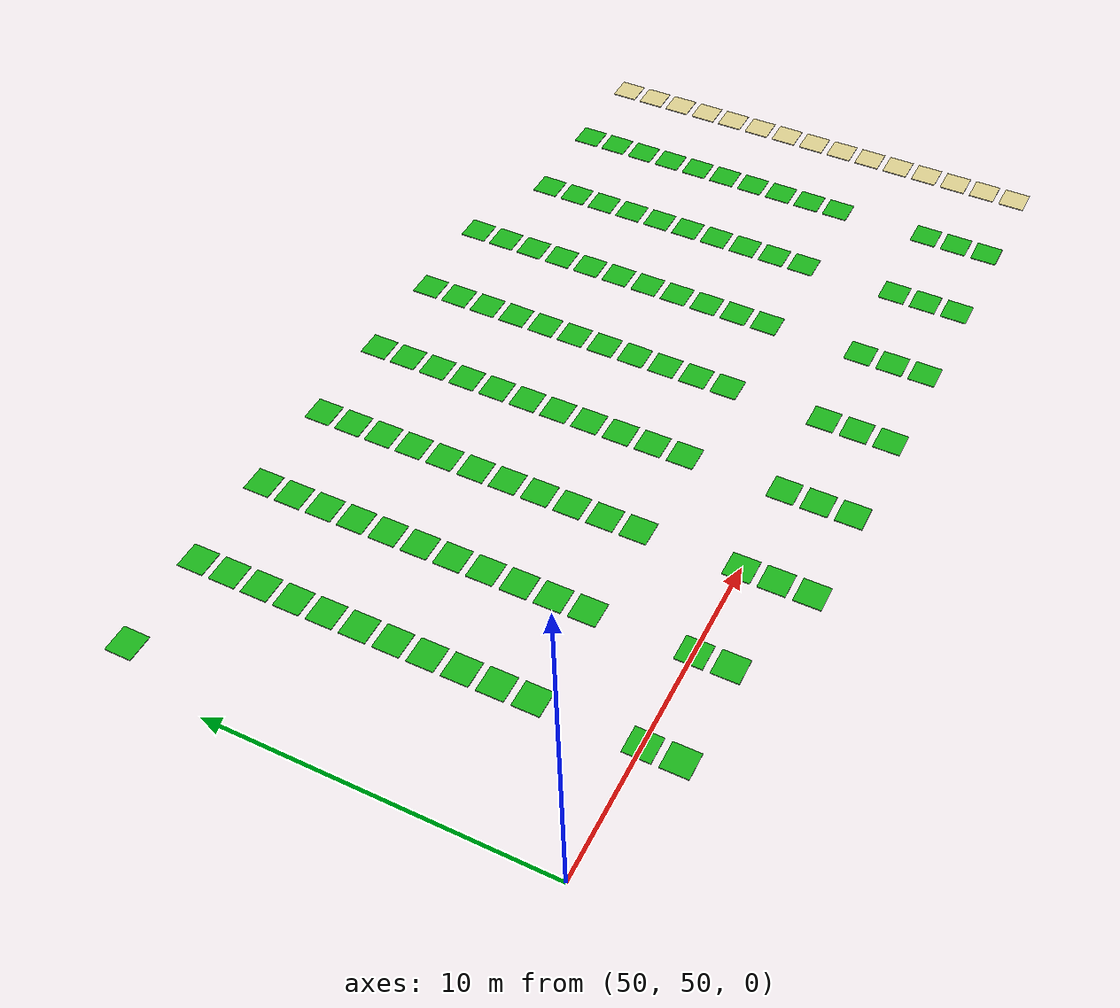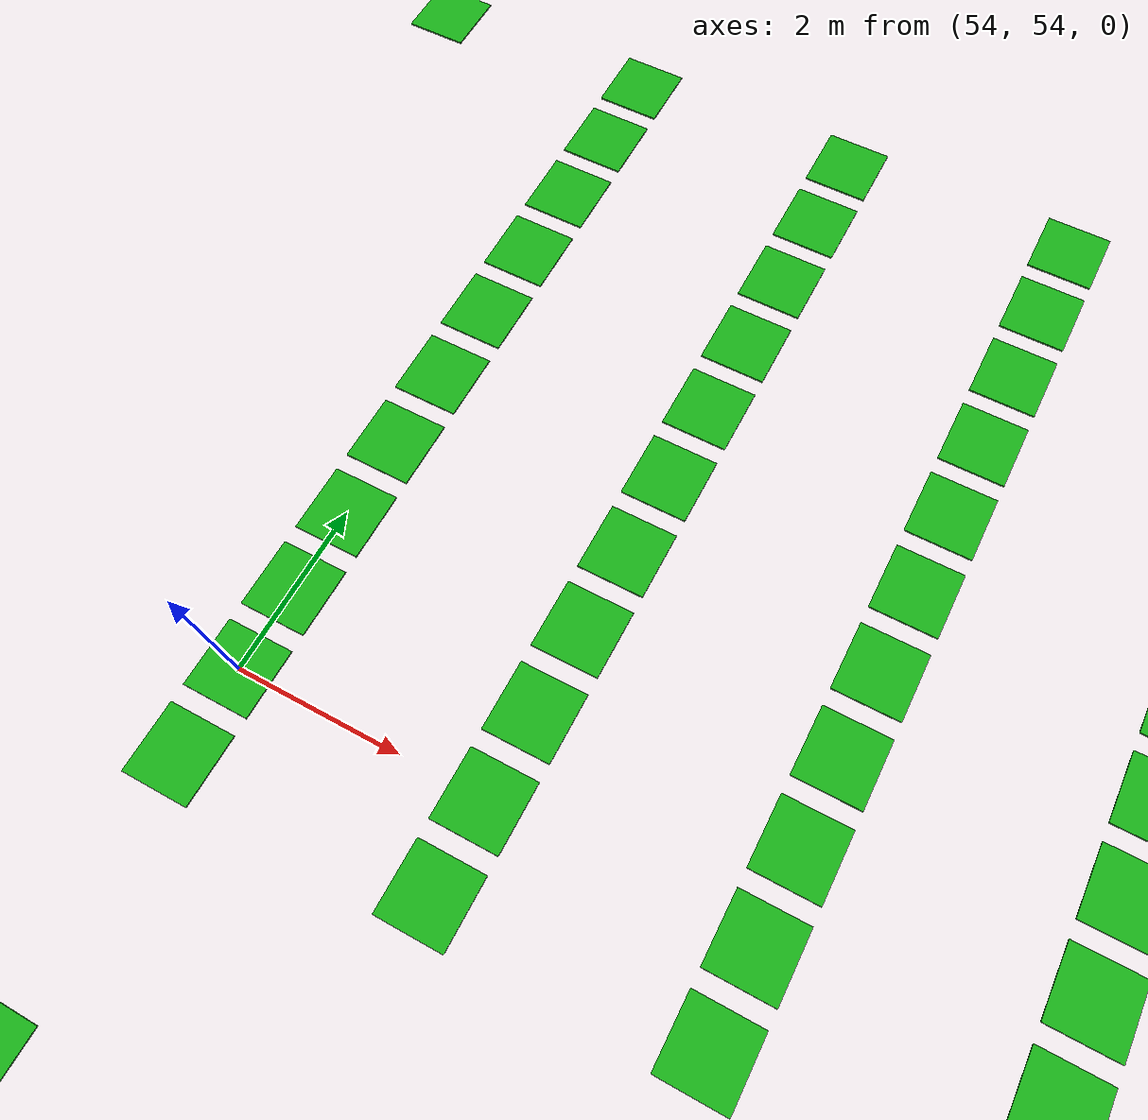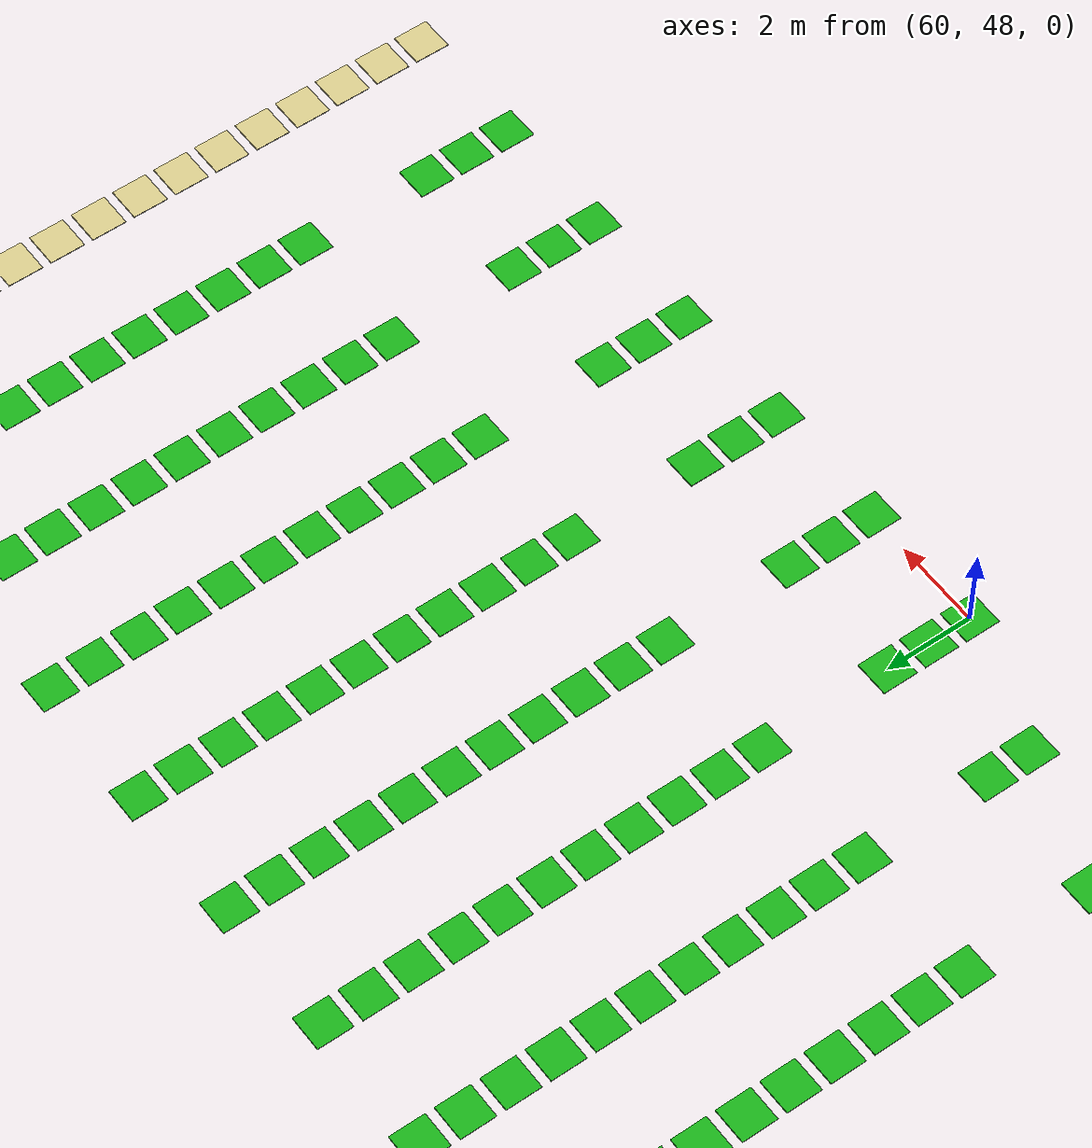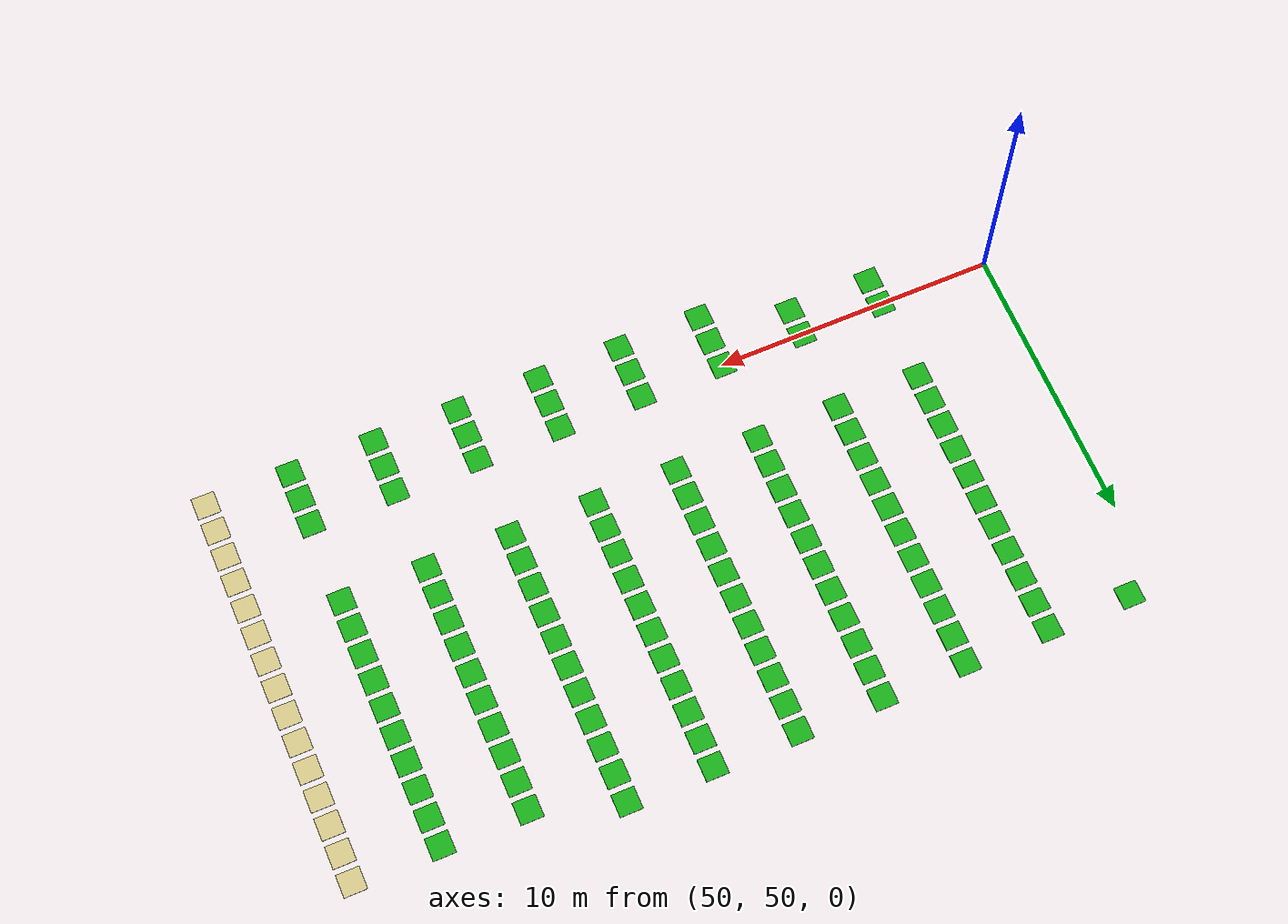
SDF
<sdf version="1.10">
 <world name="my_map">
  <model name="shelf_867">
   <static>true</static>
   <pose>51.0
        63.0
        0.02
        0 0 0</pose>
   <link name="link">
    <visual name="visual">
     <geometry><box><size>0.8
                0.8
                0.02</size></box></geometry>
     <material><ambient>0.10 0.70 0.10 1</ambient><diffuse>0.10 0.70 0.10 1</diffuse></material>
    </visual>
   </link>
  </model>
  <model name="shelf_868">
   <static>true</static>
   <pose>54.0
        63.0
        0.02
        0 0 0</pose>
   <link name="link">
    <visual name="visual">
     <geometry><box><size>0.8
                0.8
                0.02</size></box></geometry>
     <material><ambient>0.10 0.70 0.10 1</ambient><diffuse>0.10 0.70 0.10 1</diffuse></material>
    </visual>
   </link>
  </model>
  <model name="shelf_869">
   <static>true</static>
   <pose>57.0
        63.0
        0.02
        0 0 0</pose>
   <link name="link">
    <visual name="visual">
     <geometry><box><size>0.8
                0.8
                0.02</size></box></geometry>
     <material><ambient>0.10 0.70 0.10 1</ambient><diffuse>0.10 0.70 0.10 1</diffuse></material>
    </visual>
   </link>
  </model>
  <model name="shelf_870">
   <static>true</static>
   <pose>60.0
        63.0
        0.02
        0 0 0</pose>
   <link name="link">
    <visual name="visual">
     <geometry><box><size>0.8
                0.8
                0.02</size></box></geometry>
     <material><ambient>0.10 0.70 0.10 1</ambient><diffuse>0.10 0.70 0.10 1</diffuse></material>
    </visual>
   </link>
  </model>
  <model name="shelf_871">
   <static>true</static>
   <pose>63.0
        63.0
        0.02
        0 0 0</pose>
   <link name="link">
    <visual name="visual">
     <geometry><box><size>0.8
                0.8
                0.02</size></box></geometry>
     <material><ambient>0.10 0.70 0.10 1</ambient><diffuse>0.10 0.70 0.10 1</diffuse></material>
    </visual>
   </link>
  </model>
  <model name="shelf_872">
   <static>true</static>
   <pose>66.0
        63.0
        0.02
        0 0 0</pose>
   <link name="link">
    <visual name="visual">
     <geometry><box><size>0.8
                0.8
                0.02</size></box></geometry>
     <material><ambient>0.10 0.70 0.10 1</ambient><diffuse>0.10 0.70 0.10 1</diffuse></material>
    </visual>
   </link>
  </model>
  <model name="shelf_873">
   <static>true</static>
   <pose>69.0
        63.0
        0.02
        0 0 0</pose>
   <link name="link">
    <visual name="visual">
     <geometry><box><size>0.8
                0.8
                0.02</size></box></geometry>
     <material><ambient>0.10 0.70 0.10 1</ambient><diffuse>0.10 0.70 0.10 1</diffuse></material>
    </visual>
   </link>
  </model>
  <model name="shelf_893">
   <static>true</static>
   <pose>54.0
        62.0
        0.02
        0 0 0</pose>
   <link name="link">
    <visual name="visual">
     <geometry><box><size>0.8
                0.8
                0.02</size></box></geometry>
     <material><ambient>0.10 0.70 0.10 1</ambient><diffuse>0.10 0.70 0.10 1</diffuse></material>
    </visual>
   </link>
  </model>
  <model name="shelf_894">
   <static>true</static>
   <pose>57.0
        62.0
        0.02
        0 0 0</pose>
   <link name="link">
    <visual name="visual">
     <geometry><box><size>0.8
                0.8
                0.02</size></box></geometry>
     <material><ambient>0.10 0.70 0.10 1</ambient><diffuse>0.10 0.70 0.10 1</diffuse></material>
    </visual>
   </link>
  </model>
  <model name="shelf_895">
   <static>true</static>
   <pose>60.0
        62.0
        0.02
        0 0 0</pose>
   <link name="link">
    <visual name="visual">
     <geometry><box><size>0.8
                0.8
                0.02</size></box></geometry>
     <material><ambient>0.10 0.70 0.10 1</ambient><diffuse>0.10 0.70 0.10 1</diffuse></material>
    </visual>
   </link>
  </model>
  <model name="shelf_896">
   <static>true</static>
   <pose>63.0
        62.0
        0.02
        0 0 0</pose>
   <link name="link">
    <visual name="visual">
     <geometry><box><size>0.8
                0.8
                0.02</size></box></geometry>
     <material><ambient>0.10 0.70 0.10 1</ambient><diffuse>0.10 0.70 0.10 1</diffuse></material>
    </visual>
   </link>
  </model>
  <model name="shelf_897">
   <static>true</static>
   <pose>66.0
        62.0
        0.02
        0 0 0</pose>
   <link name="link">
    <visual name="visual">
     <geometry><box><size>0.8
                0.8
                0.02</size></box></geometry>
     <material><ambient>0.10 0.70 0.10 1</ambient><diffuse>0.10 0.70 0.10 1</diffuse></material>
    </visual>
   </link>
  </model>
  <model name="shelf_898">
   <static>true</static>
   <pose>69.0
        62.0
        0.02
        0 0 0</pose>
   <link name="link">
    <visual name="visual">
     <geometry><box><size>0.8
                0.8
                0.02</size></box></geometry>
     <material><ambient>0.10 0.70 0.10 1</ambient><diffuse>0.10 0.70 0.10 1</diffuse></material>
    </visual>
   </link>
  </model>
  <model name="shelf_899">
   <static>true</static>
   <pose>72.0
        62.0
        0.02
        0 0 0</pose>
   <link name="link">
    <visual name="visual">
     <geometry><box><size>0.8
                0.8
                0.02</size></box></geometry>
     <material><ambient>0.10 0.70 0.10 1</ambient><diffuse>0.10 0.70 0.10 1</diffuse></material>
    </visual>
   </link>
  </model>
  <model name="shelf_900">
   <static>true</static>
   <pose>75.0
        62.0
        0.02
        0 0 0</pose>
   <link name="link">
    <visual name="visual">
     <geometry><box><size>0.8
                0.8
                0.02</size></box></geometry>
     <material><ambient>0.10 0.70 0.10 1</ambient><diffuse>0.10 0.70 0.10 1</diffuse></material>
    </visual>
   </link>
  </model>
  <model name="staging_080">
   <static>true</static>
   <pose>78.0
        62.0
        0.02
        0 0 0</pose>
   <link name="link">
    <visual name="visual">
     <geometry><box><size>0.8
                0.8
                0.02</size></box></geometry>
     <material><ambient>0.85 0.80 0.55 1</ambient><diffuse>0.85 0.80 0.55 1</diffuse></material>
    </visual>
   </link>
  </model>
  <model name="shelf_918">
   <static>true</static>
   <pose>54.0
        61.0
        0.02
        0 0 0</pose>
   <link name="link">
    <visual name="visual">
     <geometry><box><size>0.8
                0.8
                0.02</size></box></geometry>
     <material><ambient>0.10 0.70 0.10 1</ambient><diffuse>0.10 0.70 0.10 1</diffuse></material>
    </visual>
   </link>
  </model>
  <model name="shelf_919">
   <static>true</static>
   <pose>57.0
        61.0
        0.02
        0 0 0</pose>
   <link name="link">
    <visual name="visual">
     <geometry><box><size>0.8
                0.8
                0.02</size></box></geometry>
     <material><ambient>0.10 0.70 0.10 1</ambient><diffuse>0.10 0.70 0.10 1</diffuse></material>
    </visual>
   </link>
  </model>
  <model name="shelf_920">
   <static>true</static>
   <pose>60.0
        61.0
        0.02
        0 0 0</pose>
   <link name="link">
    <visual name="visual">
     <geometry><box><size>0.8
                0.8
                0.02</size></box></geometry>
     <material><ambient>0.10 0.70 0.10 1</ambient><diffuse>0.10 0.70 0.10 1</diffuse></material>
    </visual>
   </link>
  </model>
  <model name="shelf_921">
   <static>true</static>
   <pose>63.0
        61.0
        0.02
        0 0 0</pose>
   <link name="link">
    <visual name="visual">
     <geometry><box><size>0.8
                0.8
                0.02</size></box></geometry>
     <material><ambient>0.10 0.70 0.10 1</ambient><diffuse>0.10 0.70 0.10 1</diffuse></material>
    </visual>
   </link>
  </model>
  <model name="shelf_922">
   <static>true</static>
   <pose>66.0
        61.0
        0.02
        0 0 0</pose>
   <link name="link">
    <visual name="visual">
     <geometry><box><size>0.8
                0.8
                0.02</size></box></geometry>
     <material><ambient>0.10 0.70 0.10 1</ambient><diffuse>0.10 0.70 0.10 1</diffuse></material>
    </visual>
   </link>
  </model>
  <model name="shelf_923">
   <static>true</static>
   <pose>69.0
        61.0
        0.02
        0 0 0</pose>
   <link name="link">
    <visual name="visual">
     <geometry><box><size>0.8
                0.8
                0.02</size></box></geometry>
     <material><ambient>0.10 0.70 0.10 1</ambient><diffuse>0.10 0.70 0.10 1</diffuse></material>
    </visual>
   </link>
  </model>
  <model name="shelf_924">
   <static>true</static>
   <pose>72.0
        61.0
        0.02
        0 0 0</pose>
   <link name="link">
    <visual name="visual">
     <geometry><box><size>0.8
                0.8
                0.02</size></box></geometry>
     <material><ambient>0.10 0.70 0.10 1</ambient><diffuse>0.10 0.70 0.10 1</diffuse></material>
    </visual>
   </link>
  </model>
  <model name="shelf_925">
   <static>true</static>
   <pose>75.0
        61.0
        0.02
        0 0 0</pose>
   <link name="link">
    <visual name="visual">
     <geometry><box><size>0.8
                0.8
                0.02</size></box></geometry>
     <material><ambient>0.10 0.70 0.10 1</ambient><diffuse>0.10 0.70 0.10 1</diffuse></material>
    </visual>
   </link>
  </model>
  <model name="staging_082">
   <static>true</static>
   <pose>78.0
        61.0
        0.02
        0 0 0</pose>
   <link name="link">
    <visual name="visual">
     <geometry><box><size>0.8
                0.8
                0.02</size></box></geometry>
     <material><ambient>0.85 0.80 0.55 1</ambient><diffuse>0.85 0.80 0.55 1</diffuse></material>
    </visual>
   </link>
  </model>
  <model name="shelf_943">
   <static>true</static>
   <pose>54.0
        60.0
        0.02
        0 0 0</pose>
   <link name="link">
    <visual name="visual">
     <geometry><box><size>0.8
                0.8
                0.02</size></box></geometry>
     <material><ambient>0.10 0.70 0.10 1</ambient><diffuse>0.10 0.70 0.10 1</diffuse></material>
    </visual>
   </link>
  </model>
  <model name="shelf_944">
   <static>true</static>
   <pose>57.0
        60.0
        0.02
        0 0 0</pose>
   <link name="link">
    <visual name="visual">
     <geometry><box><size>0.8
                0.8
                0.02</size></box></geometry>
     <material><ambient>0.10 0.70 0.10 1</ambient><diffuse>0.10 0.70 0.10 1</diffuse></material>
    </visual>
   </link>
  </model>
  <model name="shelf_945">
   <static>true</static>
   <pose>60.0
        60.0
        0.02
        0 0 0</pose>
   <link name="link">
    <visual name="visual">
     <geometry><box><size>0.8
                0.8
                0.02</size></box></geometry>
     <material><ambient>0.10 0.70 0.10 1</ambient><diffuse>0.10 0.70 0.10 1</diffuse></material>
    </visual>
   </link>
  </model>
  <model name="shelf_946">
   <static>true</static>
   <pose>63.0
        60.0
        0.02
        0 0 0</pose>
   <link name="link">
    <visual name="visual">
     <geometry><box><size>0.8
                0.8
                0.02</size></box></geometry>
     <material><ambient>0.10 0.70 0.10 1</ambient><diffuse>0.10 0.70 0.10 1</diffuse></material>
    </visual>
   </link>
  </model>
  <model name="shelf_947">
   <static>true</static>
   <pose>66.0
        60.0
        0.02
        0 0 0</pose>
   <link name="link">
    <visual name="visual">
     <geometry><box><size>0.8
                0.8
                0.02</size></box></geometry>
     <material><ambient>0.10 0.70 0.10 1</ambient><diffuse>0.10 0.70 0.10 1</diffuse></material>
    </visual>
   </link>
  </model>
  <model name="shelf_948">
   <static>true</static>
   <pose>69.0
        60.0
        0.02
        0 0 0</pose>
   <link name="link">
    <visual name="visual">
     <geometry><box><size>0.8
                0.8
                0.02</size></box></geometry>
     <material><ambient>0.10 0.70 0.10 1</ambient><diffuse>0.10 0.70 0.10 1</diffuse></material>
    </visual>
   </link>
  </model>
  <model name="shelf_949">
   <static>true</static>
   <pose>72.0
        60.0
        0.02
        0 0 0</pose>
   <link name="link">
    <visual name="visual">
     <geometry><box><size>0.8
                0.8
                0.02</size></box></geometry>
     <material><ambient>0.10 0.70 0.10 1</ambient><diffuse>0.10 0.70 0.10 1</diffuse></material>
    </visual>
   </link>
  </model>
  <model name="shelf_950">
   <static>true</static>
   <pose>75.0
        60.0
        0.02
        0 0 0</pose>
   <link name="link">
    <visual name="visual">
     <geometry><box><size>0.8
                0.8
                0.02</size></box></geometry>
     <material><ambient>0.10 0.70 0.10 1</ambient><diffuse>0.10 0.70 0.10 1</diffuse></material>
    </visual>
   </link>
  </model>
  <model name="staging_084">
   <static>true</static>
   <pose>78.0
        60.0
        0.02
        0 0 0</pose>
   <link name="link">
    <visual name="visual">
     <geometry><box><size>0.8
                0.8
                0.02</size></box></geometry>
     <material><ambient>0.85 0.80 0.55 1</ambient><diffuse>0.85 0.80 0.55 1</diffuse></material>
    </visual>
   </link>
  </model>
  <model name="shelf_968">
   <static>true</static>
   <pose>54.0
        59.0
        0.02
        0 0 0</pose>
   <link name="link">
    <visual name="visual">
     <geometry><box><size>0.8
                0.8
                0.02</size></box></geometry>
     <material><ambient>0.10 0.70 0.10 1</ambient><diffuse>0.10 0.70 0.10 1</diffuse></material>
    </visual>
   </link>
  </model>
  <model name="shelf_969">
   <static>true</static>
   <pose>57.0
        59.0
        0.02
        0 0 0</pose>
   <link name="link">
    <visual name="visual">
     <geometry><box><size>0.8
                0.8
                0.02</size></box></geometry>
     <material><ambient>0.10 0.70 0.10 1</ambient><diffuse>0.10 0.70 0.10 1</diffuse></material>
    </visual>
   </link>
  </model>
  <model name="shelf_970">
   <static>true</static>
   <pose>60.0
        59.0
        0.02
        0 0 0</pose>
   <link name="link">
    <visual name="visual">
     <geometry><box><size>0.8
                0.8
                0.02</size></box></geometry>
     <material><ambient>0.10 0.70 0.10 1</ambient><diffuse>0.10 0.70 0.10 1</diffuse></material>
    </visual>
   </link>
  </model>
  <model name="shelf_971">
   <static>true</static>
   <pose>63.0
        59.0
        0.02
        0 0 0</pose>
   <link name="link">
    <visual name="visual">
     <geometry><box><size>0.8
                0.8
                0.02</size></box></geometry>
     <material><ambient>0.10 0.70 0.10 1</ambient><diffuse>0.10 0.70 0.10 1</diffuse></material>
    </visual>
   </link>
  </model>
  <model name="shelf_972">
   <static>true</static>
   <pose>66.0
        59.0
        0.02
        0 0 0</pose>
   <link name="link">
    <visual name="visual">
     <geometry><box><size>0.8
                0.8
                0.02</size></box></geometry>
     <material><ambient>0.10 0.70 0.10 1</ambient><diffuse>0.10 0.70 0.10 1</diffuse></material>
    </visual>
   </link>
  </model>
  <model name="shelf_973">
   <static>true</static>
   <pose>69.0
        59.0
        0.02
        0 0 0</pose>
   <link name="link">
    <visual name="visual">
     <geometry><box><size>0.8
                0.8
                0.02</size></box></geometry>
     <material><ambient>0.10 0.70 0.10 1</ambient><diffuse>0.10 0.70 0.10 1</diffuse></material>
    </visual>
   </link>
  </model>
  <model name="shelf_974">
   <static>true</static>
   <pose>72.0
        59.0
        0.02
        0 0 0</pose>
   <link name="link">
    <visual name="visual">
     <geometry><box><size>0.8
                0.8
                0.02</size></box></geometry>
     <material><ambient>0.10 0.70 0.10 1</ambient><diffuse>0.10 0.70 0.10 1</diffuse></material>
    </visual>
   </link>
  </model>
  <model name="shelf_975">
   <static>true</static>
   <pose>75.0
        59.0
        0.02
        0 0 0</pose>
   <link name="link">
    <visual name="visual">
     <geometry><box><size>0.8
                0.8
                0.02</size></box></geometry>
     <material><ambient>0.10 0.70 0.10 1</ambient><diffuse>0.10 0.70 0.10 1</diffuse></material>
    </visual>
   </link>
  </model>
  <model name="staging_086">
   <static>true</static>
   <pose>78.0
        59.0
        0.02
        0 0 0</pose>
   <link name="link">
    <visual name="visual">
     <geometry><box><size>0.8
                0.8
                0.02</size></box></geometry>
     <material><ambient>0.85 0.80 0.55 1</ambient><diffuse>0.85 0.80 0.55 1</diffuse></material>
    </visual>
   </link>
  </model>
  <model name="shelf_993">
   <static>true</static>
   <pose>54.0
        58.0
        0.02
        0 0 0</pose>
   <link name="link">
    <visual name="visual">
     <geometry><box><size>0.8
                0.8
                0.02</size></box></geometry>
     <material><ambient>0.10 0.70 0.10 1</ambient><diffuse>0.10 0.70 0.10 1</diffuse></material>
    </visual>
   </link>
  </model>
  <model name="shelf_994">
   <static>true</static>
   <pose>57.0
        58.0
        0.02
        0 0 0</pose>
   <link name="link">
    <visual name="visual">
     <geometry><box><size>0.8
                0.8
                0.02</size></box></geometry>
     <material><ambient>0.10 0.70 0.10 1</ambient><diffuse>0.10 0.70 0.10 1</diffuse></material>
    </visual>
   </link>
  </model>
  <model name="shelf_995">
   <static>true</static>
   <pose>60.0
        58.0
        0.02
        0 0 0</pose>
   <link name="link">
    <visual name="visual">
     <geometry><box><size>0.8
                0.8
                0.02</size></box></geometry>
     <material><ambient>0.10 0.70 0.10 1</ambient><diffuse>0.10 0.70 0.10 1</diffuse></material>
    </visual>
   </link>
  </model>
  <model name="shelf_996">
   <static>true</static>
   <pose>63.0
        58.0
        0.02
        0 0 0</pose>
   <link name="link">
    <visual name="visual">
     <geometry><box><size>0.8
                0.8
                0.02</size></box></geometry>
     <material><ambient>0.10 0.70 0.10 1</ambient><diffuse>0.10 0.70 0.10 1</diffuse></material>
    </visual>
   </link>
  </model>
  <model name="shelf_997">
   <static>true</static>
   <pose>66.0
        58.0
        0.02
        0 0 0</pose>
   <link name="link">
    <visual name="visual">
     <geometry><box><size>0.8
                0.8
                0.02</size></box></geometry>
     <material><ambient>0.10 0.70 0.10 1</ambient><diffuse>0.10 0.70 0.10 1</diffuse></material>
    </visual>
   </link>
  </model>
  <model name="shelf_998">
   <static>true</static>
   <pose>69.0
        58.0
        0.02
        0 0 0</pose>
   <link name="link">
    <visual name="visual">
     <geometry><box><size>0.8
                0.8
                0.02</size></box></geometry>
     <material><ambient>0.10 0.70 0.10 1</ambient><diffuse>0.10 0.70 0.10 1</diffuse></material>
    </visual>
   </link>
  </model>
  <model name="shelf_999">
   <static>true</static>
   <pose>72.0
        58.0
        0.02
        0 0 0</pose>
   <link name="link">
    <visual name="visual">
     <geometry><box><size>0.8
                0.8
                0.02</size></box></geometry>
     <material><ambient>0.10 0.70 0.10 1</ambient><diffuse>0.10 0.70 0.10 1</diffuse></material>
    </visual>
   </link>
  </model>
  <model name="shelf_1000">
   <static>true</static>
   <pose>75.0
        58.0
        0.02
        0 0 0</pose>
   <link name="link">
    <visual name="visual">
     <geometry><box><size>0.8
                0.8
                0.02</size></box></geometry>
     <material><ambient>0.10 0.70 0.10 1</ambient><diffuse>0.10 0.70 0.10 1</diffuse></material>
    </visual>
   </link>
  </model>
  <model name="staging_088">
   <static>true</static>
   <pose>78.0
        58.0
        0.02
        0 0 0</pose>
   <link name="link">
    <visual name="visual">
     <geometry><box><size>0.8
                0.8
                0.02</size></box></geometry>
     <material><ambient>0.85 0.80 0.55 1</ambient><diffuse>0.85 0.80 0.55 1</diffuse></material>
    </visual>
   </link>
  </model>
  <model name="shelf_1018">
   <static>true</static>
   <pose>54.0
        57.0
        0.02
        0 0 0</pose>
   <link name="link">
    <visual name="visual">
     <geometry><box><size>0.8
                0.8
                0.02</size></box></geometry>
     <material><ambient>0.10 0.70 0.10 1</ambient><diffuse>0.10 0.70 0.10 1</diffuse></material>
    </visual>
   </link>
  </model>
  <model name="shelf_1019">
   <static>true</static>
   <pose>57.0
        57.0
        0.02
        0 0 0</pose>
   <link name="link">
    <visual name="visual">
     <geometry><box><size>0.8
                0.8
                0.02</size></box></geometry>
     <material><ambient>0.10 0.70 0.10 1</ambient><diffuse>0.10 0.70 0.10 1</diffuse></material>
    </visual>
   </link>
  </model>
  <model name="shelf_1020">
   <static>true</static>
   <pose>60.0
        57.0
        0.02
        0 0 0</pose>
   <link name="link">
    <visual name="visual">
     <geometry><box><size>0.8
                0.8
                0.02</size></box></geometry>
     <material><ambient>0.10 0.70 0.10 1</ambient><diffuse>0.10 0.70 0.10 1</diffuse></material>
    </visual>
   </link>
  </model>
  <model name="shelf_1021">
   <static>true</static>
   <pose>63.0
        57.0
        0.02
        0 0 0</pose>
   <link name="link">
    <visual name="visual">
     <geometry><box><size>0.8
                0.8
                0.02</size></box></geometry>
     <material><ambient>0.10 0.70 0.10 1</ambient><diffuse>0.10 0.70 0.10 1</diffuse></material>
    </visual>
   </link>
  </model>
  <model name="shelf_1022">
   <static>true</static>
   <pose>66.0
        57.0
        0.02
        0 0 0</pose>
   <link name="link">
    <visual name="visual">
     <geometry><box><size>0.8
                0.8
                0.02</size></box></geometry>
     <material><ambient>0.10 0.70 0.10 1</ambient><diffuse>0.10 0.70 0.10 1</diffuse></material>
    </visual>
   </link>
  </model>
  <model name="shelf_1023">
   <static>true</static>
   <pose>69.0
        57.0
        0.02
        0 0 0</pose>
   <link name="link">
    <visual name="visual">
     <geometry><box><size>0.8
                0.8
                0.02</size></box></geometry>
     <material><ambient>0.10 0.70 0.10 1</ambient><diffuse>0.10 0.70 0.10 1</diffuse></material>
    </visual>
   </link>
  </model>
  <model name="shelf_1024">
   <static>true</static>
   <pose>72.0
        57.0
        0.02
        0 0 0</pose>
   <link name="link">
    <visual name="visual">
     <geometry><box><size>0.8
                0.8
                0.02</size></box></geometry>
     <material><ambient>0.10 0.70 0.10 1</ambient><diffuse>0.10 0.70 0.10 1</diffuse></material>
    </visual>
   </link>
  </model>
  <model name="shelf_1025">
   <static>true</static>
   <pose>75.0
        57.0
        0.02
        0 0 0</pose>
   <link name="link">
    <visual name="visual">
     <geometry><box><size>0.8
                0.8
                0.02</size></box></geometry>
     <material><ambient>0.10 0.70 0.10 1</ambient><diffuse>0.10 0.70 0.10 1</diffuse></material>
    </visual>
   </link>
  </model>
  <model name="staging_090">
   <static>true</static>
   <pose>78.0
        57.0
        0.02
        0 0 0</pose>
   <link name="link">
    <visual name="visual">
     <geometry><box><size>0.8
                0.8
                0.02</size></box></geometry>
     <material><ambient>0.85 0.80 0.55 1</ambient><diffuse>0.85 0.80 0.55 1</diffuse></material>
    </visual>
   </link>
  </model>
  <model name="shelf_1043">
   <static>true</static>
   <pose>54.0
        56.0
        0.02
        0 0 0</pose>
   <link name="link">
    <visual name="visual">
     <geometry><box><size>0.8
                0.8
                0.02</size></box></geometry>
     <material><ambient>0.10 0.70 0.10 1</ambient><diffuse>0.10 0.70 0.10 1</diffuse></material>
    </visual>
   </link>
  </model>
  <model name="shelf_1044">
   <static>true</static>
   <pose>57.0
        56.0
        0.02
        0 0 0</pose>
   <link name="link">
    <visual name="visual">
     <geometry><box><size>0.8
                0.8
                0.02</size></box></geometry>
     <material><ambient>0.10 0.70 0.10 1</ambient><diffuse>0.10 0.70 0.10 1</diffuse></material>
    </visual>
   </link>
  </model>
  <model name="shelf_1045">
   <static>true</static>
   <pose>60.0
        56.0
        0.02
        0 0 0</pose>
   <link name="link">
    <visual name="visual">
     <geometry><box><size>0.8
                0.8
                0.02</size></box></geometry>
     <material><ambient>0.10 0.70 0.10 1</ambient><diffuse>0.10 0.70 0.10 1</diffuse></material>
    </visual>
   </link>
  </model>
  <model name="shelf_1046">
   <static>true</static>
   <pose>63.0
        56.0
        0.02
        0 0 0</pose>
   <link name="link">
    <visual name="visual">
     <geometry><box><size>0.8
                0.8
                0.02</size></box></geometry>
     <material><ambient>0.10 0.70 0.10 1</ambient><diffuse>0.10 0.70 0.10 1</diffuse></material>
    </visual>
   </link>
  </model>
  <model name="shelf_1047">
   <static>true</static>
   <pose>66.0
        56.0
        0.02
        0 0 0</pose>
   <link name="link">
    <visual name="visual">
     <geometry><box><size>0.8
                0.8
                0.02</size></box></geometry>
     <material><ambient>0.10 0.70 0.10 1</ambient><diffuse>0.10 0.70 0.10 1</diffuse></material>
    </visual>
   </link>
  </model>
  <model name="shelf_1048">
   <static>true</static>
   <pose>69.0
        56.0
        0.02
        0 0 0</pose>
   <link name="link">
    <visual name="visual">
     <geometry><box><size>0.8
                0.8
                0.02</size></box></geometry>
     <material><ambient>0.10 0.70 0.10 1</ambient><diffuse>0.10 0.70 0.10 1</diffuse></material>
    </visual>
   </link>
  </model>
  <model name="shelf_1049">
   <static>true</static>
   <pose>72.0
        56.0
        0.02
        0 0 0</pose>
   <link name="link">
    <visual name="visual">
     <geometry><box><size>0.8
                0.8
                0.02</size></box></geometry>
     <material><ambient>0.10 0.70 0.10 1</ambient><diffuse>0.10 0.70 0.10 1</diffuse></material>
    </visual>
   </link>
  </model>
  <model name="shelf_1050">
   <static>true</static>
   <pose>75.0
        56.0
        0.02
        0 0 0</pose>
   <link name="link">
    <visual name="visual">
     <geometry><box><size>0.8
                0.8
                0.02</size></box></geometry>
     <material><ambient>0.10 0.70 0.10 1</ambient><diffuse>0.10 0.70 0.10 1</diffuse></material>
    </visual>
   </link>
  </model>
  <model name="staging_092">
   <static>true</static>
   <pose>78.0
        56.0
        0.02
        0 0 0</pose>
   <link name="link">
    <visual name="visual">
     <geometry><box><size>0.8
                0.8
                0.02</size></box></geometry>
     <material><ambient>0.85 0.80 0.55 1</ambient><diffuse>0.85 0.80 0.55 1</diffuse></material>
    </visual>
   </link>
  </model>
  <model name="shelf_1068">
   <static>true</static>
   <pose>54.0
        55.0
        0.02
        0 0 0</pose>
   <link name="link">
    <visual name="visual">
     <geometry><box><size>0.8
                0.8
                0.02</size></box></geometry>
     <material><ambient>0.10 0.70 0.10 1</ambient><diffuse>0.10 0.70 0.10 1</diffuse></material>
    </visual>
   </link>
  </model>
  <model name="shelf_1069">
   <static>true</static>
   <pose>57.0
        55.0
        0.02
        0 0 0</pose>
   <link name="link">
    <visual name="visual">
     <geometry><box><size>0.8
                0.8
                0.02</size></box></geometry>
     <material><ambient>0.10 0.70 0.10 1</ambient><diffuse>0.10 0.70 0.10 1</diffuse></material>
    </visual>
   </link>
  </model>
  <model name="shelf_1070">
   <static>true</static>
   <pose>60.0
        55.0
        0.02
        0 0 0</pose>
   <link name="link">
    <visual name="visual">
     <geometry><box><size>0.8
                0.8
                0.02</size></box></geometry>
     <material><ambient>0.10 0.70 0.10 1</ambient><diffuse>0.10 0.70 0.10 1</diffuse></material>
    </visual>
   </link>
  </model>
  <model name="shelf_1071">
   <static>true</static>
   <pose>63.0
        55.0
        0.02
        0 0 0</pose>
   <link name="link">
    <visual name="visual">
     <geometry><box><size>0.8
                0.8
                0.02</size></box></geometry>
     <material><ambient>0.10 0.70 0.10 1</ambient><diffuse>0.10 0.70 0.10 1</diffuse></material>
    </visual>
   </link>
  </model>
  <model name="shelf_1072">
   <static>true</static>
   <pose>66.0
        55.0
        0.02
        0 0 0</pose>
   <link name="link">
    <visual name="visual">
     <geometry><box><size>0.8
                0.8
                0.02</size></box></geometry>
     <material><ambient>0.10 0.70 0.10 1</ambient><diffuse>0.10 0.70 0.10 1</diffuse></material>
    </visual>
   </link>
  </model>
  <model name="shelf_1073">
   <static>true</static>
   <pose>69.0
        55.0
        0.02
        0 0 0</pose>
   <link name="link">
    <visual name="visual">
     <geometry><box><size>0.8
                0.8
                0.02</size></box></geometry>
     <material><ambient>0.10 0.70 0.10 1</ambient><diffuse>0.10 0.70 0.10 1</diffuse></material>
    </visual>
   </link>
  </model>
  <model name="shelf_1074">
   <static>true</static>
   <pose>72.0
        55.0
        0.02
        0 0 0</pose>
   <link name="link">
    <visual name="visual">
     <geometry><box><size>0.8
                0.8
                0.02</size></box></geometry>
     <material><ambient>0.10 0.70 0.10 1</ambient><diffuse>0.10 0.70 0.10 1</diffuse></material>
    </visual>
   </link>
  </model>
  <model name="shelf_1075">
   <static>true</static>
   <pose>75.0
        55.0
        0.02
        0 0 0</pose>
   <link name="link">
    <visual name="visual">
     <geometry><box><size>0.8
                0.8
                0.02</size></box></geometry>
     <material><ambient>0.10 0.70 0.10 1</ambient><diffuse>0.10 0.70 0.10 1</diffuse></material>
    </visual>
   </link>
  </model>
  <model name="staging_094">
   <static>true</static>
   <pose>78.0
        55.0
        0.02
        0 0 0</pose>
   <link name="link">
    <visual name="visual">
     <geometry><box><size>0.8
                0.8
                0.02</size></box></geometry>
     <material><ambient>0.85 0.80 0.55 1</ambient><diffuse>0.85 0.80 0.55 1</diffuse></material>
    </visual>
   </link>
  </model>
  <model name="shelf_1093">
   <static>true</static>
   <pose>54.0
        54.0
        0.02
        0 0 0</pose>
   <link name="link">
    <visual name="visual">
     <geometry><box><size>0.8
                0.8
                0.02</size></box></geometry>
     <material><ambient>0.10 0.70 0.10 1</ambient><diffuse>0.10 0.70 0.10 1</diffuse></material>
    </visual>
   </link>
  </model>
  <model name="shelf_1094">
   <static>true</static>
   <pose>57.0
        54.0
        0.02
        0 0 0</pose>
   <link name="link">
    <visual name="visual">
     <geometry><box><size>0.8
                0.8
                0.02</size></box></geometry>
     <material><ambient>0.10 0.70 0.10 1</ambient><diffuse>0.10 0.70 0.10 1</diffuse></material>
    </visual>
   </link>
  </model>
  <model name="shelf_1095">
   <static>true</static>
   <pose>60.0
        54.0
        0.02
        0 0 0</pose>
   <link name="link">
    <visual name="visual">
     <geometry><box><size>0.8
                0.8
                0.02</size></box></geometry>
     <material><ambient>0.10 0.70 0.10 1</ambient><diffuse>0.10 0.70 0.10 1</diffuse></material>
    </visual>
   </link>
  </model>
  <model name="shelf_1096">
   <static>true</static>
   <pose>63.0
        54.0
        0.02
        0 0 0</pose>
   <link name="link">
    <visual name="visual">
     <geometry><box><size>0.8
                0.8
                0.02</size></box></geometry>
     <material><ambient>0.10 0.70 0.10 1</ambient><diffuse>0.10 0.70 0.10 1</diffuse></material>
    </visual>
   </link>
  </model>
  <model name="shelf_1097">
   <static>true</static>
   <pose>66.0
        54.0
        0.02
        0 0 0</pose>
   <link name="link">
    <visual name="visual">
     <geometry><box><size>0.8
                0.8
                0.02</size></box></geometry>
     <material><ambient>0.10 0.70 0.10 1</ambient><diffuse>0.10 0.70 0.10 1</diffuse></material>
    </visual>
   </link>
  </model>
  <model name="shelf_1098">
   <static>true</static>
   <pose>69.0
        54.0
        0.02
        0 0 0</pose>
   <link name="link">
    <visual name="visual">
     <geometry><box><size>0.8
                0.8
                0.02</size></box></geometry>
     <material><ambient>0.10 0.70 0.10 1</ambient><diffuse>0.10 0.70 0.10 1</diffuse></material>
    </visual>
   </link>
  </model>
  <model name="shelf_1099">
   <static>true</static>
   <pose>72.0
        54.0
        0.02
        0 0 0</pose>
   <link name="link">
    <visual name="visual">
     <geometry><box><size>0.8
                0.8
                0.02</size></box></geometry>
     <material><ambient>0.10 0.70 0.10 1</ambient><diffuse>0.10 0.70 0.10 1</diffuse></material>
    </visual>
   </link>
  </model>
  <model name="shelf_1100">
   <static>true</static>
   <pose>75.0
        54.0
        0.02
        0 0 0</pose>
   <link name="link">
    <visual name="visual">
     <geometry><box><size>0.8
                0.8
                0.02</size></box></geometry>
     <material><ambient>0.10 0.70 0.10 1</ambient><diffuse>0.10 0.70 0.10 1</diffuse></material>
    </visual>
   </link>
  </model>
  <model name="staging_096">
   <static>true</static>
   <pose>78.0
        54.0
        0.02
        0 0 0</pose>
   <link name="link">
    <visual name="visual">
     <geometry><box><size>0.8
                0.8
                0.02</size></box></geometry>
     <material><ambient>0.85 0.80 0.55 1</ambient><diffuse>0.85 0.80 0.55 1</diffuse></material>
    </visual>
   </link>
  </model>
  <model name="shelf_1118">
   <static>true</static>
   <pose>54.0
        53.0
        0.02
        0 0 0</pose>
   <link name="link">
    <visual name="visual">
     <geometry><box><size>0.8
                0.8
                0.02</size></box></geometry>
     <material><ambient>0.10 0.70 0.10 1</ambient><diffuse>0.10 0.70 0.10 1</diffuse></material>
    </visual>
   </link>
  </model>
  <model name="shelf_1119">
   <static>true</static>
   <pose>57.0
        53.0
        0.02
        0 0 0</pose>
   <link name="link">
    <visual name="visual">
     <geometry><box><size>0.8
                0.8
                0.02</size></box></geometry>
     <material><ambient>0.10 0.70 0.10 1</ambient><diffuse>0.10 0.70 0.10 1</diffuse></material>
    </visual>
   </link>
  </model>
  <model name="shelf_1120">
   <static>true</static>
   <pose>60.0
        53.0
        0.02
        0 0 0</pose>
   <link name="link">
    <visual name="visual">
     <geometry><box><size>0.8
                0.8
                0.02</size></box></geometry>
     <material><ambient>0.10 0.70 0.10 1</ambient><diffuse>0.10 0.70 0.10 1</diffuse></material>
    </visual>
   </link>
  </model>
  <model name="shelf_1121">
   <static>true</static>
   <pose>63.0
        53.0
        0.02
        0 0 0</pose>
   <link name="link">
    <visual name="visual">
     <geometry><box><size>0.8
                0.8
                0.02</size></box></geometry>
     <material><ambient>0.10 0.70 0.10 1</ambient><diffuse>0.10 0.70 0.10 1</diffuse></material>
    </visual>
   </link>
  </model>
  <model name="shelf_1122">
   <static>true</static>
   <pose>66.0
        53.0
        0.02
        0 0 0</pose>
   <link name="link">
    <visual name="visual">
     <geometry><box><size>0.8
                0.8
                0.02</size></box></geometry>
     <material><ambient>0.10 0.70 0.10 1</ambient><diffuse>0.10 0.70 0.10 1</diffuse></material>
    </visual>
   </link>
  </model>
  <model name="shelf_1123">
   <static>true</static>
   <pose>69.0
        53.0
        0.02
        0 0 0</pose>
   <link name="link">
    <visual name="visual">
     <geometry><box><size>0.8
                0.8
                0.02</size></box></geometry>
     <material><ambient>0.10 0.70 0.10 1</ambient><diffuse>0.10 0.70 0.10 1</diffuse></material>
    </visual>
   </link>
  </model>
  <model name="shelf_1124">
   <static>true</static>
   <pose>72.0
        53.0
        0.02
        0 0 0</pose>
   <link name="link">
    <visual name="visual">
     <geometry><box><size>0.8
                0.8
                0.02</size></box></geometry>
     <material><ambient>0.10 0.70 0.10 1</ambient><diffuse>0.10 0.70 0.10 1</diffuse></material>
    </visual>
   </link>
  </model>
  <model name="shelf_1125">
   <static>true</static>
   <pose>75.0
        53.0
        0.02
        0 0 0</pose>
   <link name="link">
    <visual name="visual">
     <geometry><box><size>0.8
                0.8
                0.02</size></box></geometry>
     <material><ambient>0.10 0.70 0.10 1</ambient><diffuse>0.10 0.70 0.10 1</diffuse></material>
    </visual>
   </link>
  </model>
  <model name="staging_098">
   <static>true</static>
   <pose>78.0
        53.0
        0.02
        0 0 0</pose>
   <link name="link">
    <visual name="visual">
     <geometry><box><size>0.8
                0.8
                0.02</size></box></geometry>
     <material><ambient>0.85 0.80 0.55 1</ambient><diffuse>0.85 0.80 0.55 1</diffuse></material>
    </visual>
   </link>
  </model>
  <model name="staging_100">
   <static>true</static>
   <pose>78.0
        52.0
        0.02
        0 0 0</pose>
   <link name="link">
    <visual name="visual">
     <geometry><box><size>0.8
                0.8
                0.02</size></box></geometry>
     <material><ambient>0.85 0.80 0.55 1</ambient><diffuse>0.85 0.80 0.55 1</diffuse></material>
    </visual>
   </link>
  </model>
  <model name="staging_102">
   <static>true</static>
   <pose>78.0
        51.0
        0.02
        0 0 0</pose>
   <link name="link">
    <visual name="visual">
     <geometry><box><size>0.8
                0.8
                0.02</size></box></geometry>
     <material><ambient>0.85 0.80 0.55 1</ambient><diffuse>0.85 0.80 0.55 1</diffuse></material>
    </visual>
   </link>
  </model>
  <model name="shelf_1143">
   <static>true</static>
   <pose>54.0
        50.0
        0.02
        0 0 0</pose>
   <link name="link">
    <visual name="visual">
     <geometry><box><size>0.8
                0.8
                0.02</size></box></geometry>
     <material><ambient>0.10 0.70 0.10 1</ambient><diffuse>0.10 0.70 0.10 1</diffuse></material>
    </visual>
   </link>
  </model>
  <model name="shelf_1144">
   <static>true</static>
   <pose>57.0
        50.0
        0.02
        0 0 0</pose>
   <link name="link">
    <visual name="visual">
     <geometry><box><size>0.8
                0.8
                0.02</size></box></geometry>
     <material><ambient>0.10 0.70 0.10 1</ambient><diffuse>0.10 0.70 0.10 1</diffuse></material>
    </visual>
   </link>
  </model>
  <model name="shelf_1145">
   <static>true</static>
   <pose>60.0
        50.0
        0.02
        0 0 0</pose>
   <link name="link">
    <visual name="visual">
     <geometry><box><size>0.8
                0.8
                0.02</size></box></geometry>
     <material><ambient>0.10 0.70 0.10 1</ambient><diffuse>0.10 0.70 0.10 1</diffuse></material>
    </visual>
   </link>
  </model>
  <model name="shelf_1146">
   <static>true</static>
   <pose>63.0
        50.0
        0.02
        0 0 0</pose>
   <link name="link">
    <visual name="visual">
     <geometry><box><size>0.8
                0.8
                0.02</size></box></geometry>
     <material><ambient>0.10 0.70 0.10 1</ambient><diffuse>0.10 0.70 0.10 1</diffuse></material>
    </visual>
   </link>
  </model>
  <model name="shelf_1147">
   <static>true</static>
   <pose>66.0
        50.0
        0.02
        0 0 0</pose>
   <link name="link">
    <visual name="visual">
     <geometry><box><size>0.8
                0.8
                0.02</size></box></geometry>
     <material><ambient>0.10 0.70 0.10 1</ambient><diffuse>0.10 0.70 0.10 1</diffuse></material>
    </visual>
   </link>
  </model>
  <model name="shelf_1148">
   <static>true</static>
   <pose>69.0
        50.0
        0.02
        0 0 0</pose>
   <link name="link">
    <visual name="visual">
     <geometry><box><size>0.8
                0.8
                0.02</size></box></geometry>
     <material><ambient>0.10 0.70 0.10 1</ambient><diffuse>0.10 0.70 0.10 1</diffuse></material>
    </visual>
   </link>
  </model>
  <model name="shelf_1149">
   <static>true</static>
   <pose>72.0
        50.0
        0.02
        0 0 0</pose>
   <link name="link">
    <visual name="visual">
     <geometry><box><size>0.8
                0.8
                0.02</size></box></geometry>
     <material><ambient>0.10 0.70 0.10 1</ambient><diffuse>0.10 0.70 0.10 1</diffuse></material>
    </visual>
   </link>
  </model>
  <model name="shelf_1150">
   <static>true</static>
   <pose>75.0
        50.0
        0.02
        0 0 0</pose>
   <link name="link">
    <visual name="visual">
     <geometry><box><size>0.8
                0.8
                0.02</size></box></geometry>
     <material><ambient>0.10 0.70 0.10 1</ambient><diffuse>0.10 0.70 0.10 1</diffuse></material>
    </visual>
   </link>
  </model>
  <model name="staging_104">
   <static>true</static>
   <pose>78.0
        50.0
        0.02
        0 0 0</pose>
   <link name="link">
    <visual name="visual">
     <geometry><box><size>0.8
                0.8
                0.02</size></box></geometry>
     <material><ambient>0.85 0.80 0.55 1</ambient><diffuse>0.85 0.80 0.55 1</diffuse></material>
    </visual>
   </link>
  </model>
  <model name="shelf_1168">
   <static>true</static>
   <pose>54.0
        49.0
        0.02
        0 0 0</pose>
   <link name="link">
    <visual name="visual">
     <geometry><box><size>0.8
                0.8
                0.02</size></box></geometry>
     <material><ambient>0.10 0.70 0.10 1</ambient><diffuse>0.10 0.70 0.10 1</diffuse></material>
    </visual>
   </link>
  </model>
  <model name="shelf_1169">
   <static>true</static>
   <pose>57.0
        49.0
        0.02
        0 0 0</pose>
   <link name="link">
    <visual name="visual">
     <geometry><box><size>0.8
                0.8
                0.02</size></box></geometry>
     <material><ambient>0.10 0.70 0.10 1</ambient><diffuse>0.10 0.70 0.10 1</diffuse></material>
    </visual>
   </link>
  </model>
  <model name="shelf_1170">
   <static>true</static>
   <pose>60.0
        49.0
        0.02
        0 0 0</pose>
   <link name="link">
    <visual name="visual">
     <geometry><box><size>0.8
                0.8
                0.02</size></box></geometry>
     <material><ambient>0.10 0.70 0.10 1</ambient><diffuse>0.10 0.70 0.10 1</diffuse></material>
    </visual>
   </link>
  </model>
  <model name="shelf_1171">
   <static>true</static>
   <pose>63.0
        49.0
        0.02
        0 0 0</pose>
   <link name="link">
    <visual name="visual">
     <geometry><box><size>0.8
                0.8
                0.02</size></box></geometry>
     <material><ambient>0.10 0.70 0.10 1</ambient><diffuse>0.10 0.70 0.10 1</diffuse></material>
    </visual>
   </link>
  </model>
  <model name="shelf_1172">
   <static>true</static>
   <pose>66.0
        49.0
        0.02
        0 0 0</pose>
   <link name="link">
    <visual name="visual">
     <geometry><box><size>0.8
                0.8
                0.02</size></box></geometry>
     <material><ambient>0.10 0.70 0.10 1</ambient><diffuse>0.10 0.70 0.10 1</diffuse></material>
    </visual>
   </link>
  </model>
  <model name="shelf_1173">
   <static>true</static>
   <pose>69.0
        49.0
        0.02
        0 0 0</pose>
   <link name="link">
    <visual name="visual">
     <geometry><box><size>0.8
                0.8
                0.02</size></box></geometry>
     <material><ambient>0.10 0.70 0.10 1</ambient><diffuse>0.10 0.70 0.10 1</diffuse></material>
    </visual>
   </link>
  </model>
  <model name="shelf_1174">
   <static>true</static>
   <pose>72.0
        49.0
        0.02
        0 0 0</pose>
   <link name="link">
    <visual name="visual">
     <geometry><box><size>0.8
                0.8
                0.02</size></box></geometry>
     <material><ambient>0.10 0.70 0.10 1</ambient><diffuse>0.10 0.70 0.10 1</diffuse></material>
    </visual>
   </link>
  </model>
  <model name="shelf_1175">
   <static>true</static>
   <pose>75.0
        49.0
        0.02
        0 0 0</pose>
   <link name="link">
    <visual name="visual">
     <geometry><box><size>0.8
                0.8
                0.02</size></box></geometry>
     <material><ambient>0.10 0.70 0.10 1</ambient><diffuse>0.10 0.70 0.10 1</diffuse></material>
    </visual>
   </link>
  </model>
  <model name="staging_106">
   <static>true</static>
   <pose>78.0
        49.0
        0.02
        0 0 0</pose>
   <link name="link">
    <visual name="visual">
     <geometry><box><size>0.8
                0.8
                0.02</size></box></geometry>
     <material><ambient>0.85 0.80 0.55 1</ambient><diffuse>0.85 0.80 0.55 1</diffuse></material>
    </visual>
   </link>
  </model>
  <model name="shelf_1195">
   <static>true</static>
   <pose>60.0
        48.0
        0.02
        0 0 0</pose>
   <link name="link">
    <visual name="visual">
     <geometry><box><size>0.8
                0.8
                0.02</size></box></geometry>
     <material><ambient>0.10 0.70 0.10 1</ambient><diffuse>0.10 0.70 0.10 1</diffuse></material>
    </visual>
   </link>
  </model>
  <model name="shelf_1196">
   <static>true</static>
   <pose>63.0
        48.0
        0.02
        0 0 0</pose>
   <link name="link">
    <visual name="visual">
     <geometry><box><size>0.8
                0.8
                0.02</size></box></geometry>
     <material><ambient>0.10 0.70 0.10 1</ambient><diffuse>0.10 0.70 0.10 1</diffuse></material>
    </visual>
   </link>
  </model>
  <model name="shelf_1197">
   <static>true</static>
   <pose>66.0
        48.0
        0.02
        0 0 0</pose>
   <link name="link">
    <visual name="visual">
     <geometry><box><size>0.8
                0.8
                0.02</size></box></geometry>
     <material><ambient>0.10 0.70 0.10 1</ambient><diffuse>0.10 0.70 0.10 1</diffuse></material>
    </visual>
   </link>
  </model>
  <model name="shelf_1198">
   <static>true</static>
   <pose>69.0
        48.0
        0.02
        0 0 0</pose>
   <link name="link">
    <visual name="visual">
     <geometry><box><size>0.8
                0.8
                0.02</size></box></geometry>
     <material><ambient>0.10 0.70 0.10 1</ambient><diffuse>0.10 0.70 0.10 1</diffuse></material>
    </visual>
   </link>
  </model>
  <model name="shelf_1199">
   <static>true</static>
   <pose>72.0
        48.0
        0.02
        0 0 0</pose>
   <link name="link">
    <visual name="visual">
     <geometry><box><size>0.8
                0.8
                0.02</size></box></geometry>
     <material><ambient>0.10 0.70 0.10 1</ambient><diffuse>0.10 0.70 0.10 1</diffuse></material>
    </visual>
   </link>
  </model>
  <model name="shelf_1200">
   <static>true</static>
   <pose>75.0
        48.0
        0.02
        0 0 0</pose>
   <link name="link">
    <visual name="visual">
     <geometry><box><size>0.8
                0.8
                0.02</size></box></geometry>
     <material><ambient>0.10 0.70 0.10 1</ambient><diffuse>0.10 0.70 0.10 1</diffuse></material>
    </visual>
   </link>
  </model>
  <model name="staging_108">
   <static>true</static>
   <pose>78.0
        48.0
        0.02
        0 0 0</pose>
   <link name="link">
    <visual name="visual">
     <geometry><box><size>0.8
                0.8
                0.02</size></box></geometry>
     <material><ambient>0.85 0.80 0.55 1</ambient><diffuse>0.85 0.80 0.55 1</diffuse></material>
    </visual>
   </link>
  </model>
 </world>
</sdf>
